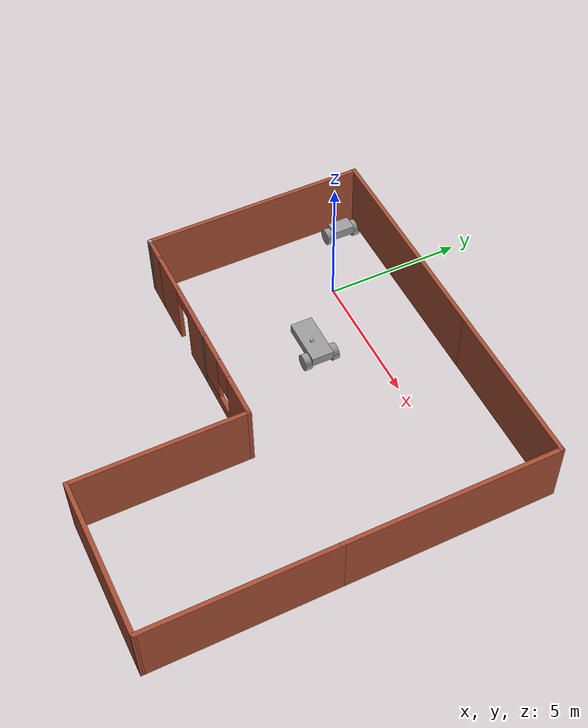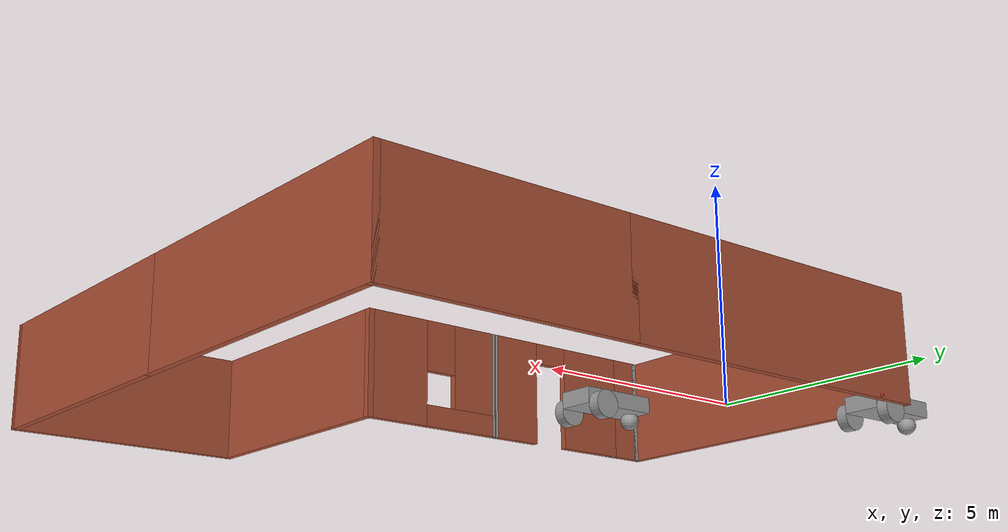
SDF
<?xml version='1.0'?>
<sdf version='1.6'>
  <model name='firstmodel'>
    <model name='first_robot'>
      <link name='link_0'>
        <inertial>
          <mass>0.505177</mass>
          <inertia>
            <ixx>0.0333345</ixx>
            <ixy>0</ixy>
            <ixz>0</ixz>
            <iyy>0.138072</iyy>
            <iyz>0</iyz>
            <izz>0.161276</izz>
          </inertia>
          <pose frame=''>0 0 0.4 0 -0 0</pose>
        </inertial>
        <pose frame=''>-0.130088 0.018348 0.092404 0 -0 0</pose>
        <gravity>1</gravity>
        <self_collide>0</self_collide>
        <kinematic>0</kinematic>
        <enable_wind>0</enable_wind>
        <visual name='visual'>
          <pose frame=''>0 0 0 0 -0 0</pose>
          <geometry>
            <box>
              <size>1.77748 0.819461 0.346863</size>
            </box>
          </geometry>
          <material>
            <lighting>1</lighting>
            <script>
              <uri>file://media/materials/scripts/gazebo.material</uri>
              <name>Gazebo/Grey</name>
            </script>
            <shader type='vertex'>
              <normal_map>__default__</normal_map>
            </shader>
            <ambient>0.3 0.3 0.3 1</ambient>
            <diffuse>0.7 0.7 0.7 1</diffuse>
            <specular>0.01 0.01 0.01 1</specular>
            <emissive>0 0 0 1</emissive>
          </material>
          <transparency>0</transparency>
          <cast_shadows>1</cast_shadows>
        </visual>
        <collision name='collision'>
          <laser_retro>0</laser_retro>
          <max_contacts>10</max_contacts>
          <pose frame=''>0 0 0 0 -0 0</pose>
          <geometry>
            <box>
              <size>1.77748 0.819461 0.346863</size>
            </box>
          </geometry>
          <surface>
            <friction>
              <ode>
                <mu>1</mu>
                <mu2>1</mu2>
                <fdir1>0 0 0</fdir1>
                <slip1>0</slip1>
                <slip2>0</slip2>
              </ode>
              <torsional>
                <coefficient>1</coefficient>
                <patch_radius>0</patch_radius>
                <surface_radius>0</surface_radius>
                <use_patch_radius>1</use_patch_radius>
                <ode>
                  <slip>0</slip>
                </ode>
              </torsional>
            </friction>
            <bounce>
              <restitution_coefficient>0</restitution_coefficient>
              <threshold>1e+06</threshold>
            </bounce>
            <contact>
              <collide_without_contact>0</collide_without_contact>
              <collide_without_contact_bitmask>1</collide_without_contact_bitmask>
              <collide_bitmask>1</collide_bitmask>
              <ode>
                <soft_cfm>0</soft_cfm>
                <soft_erp>0.2</soft_erp>
                <kp>1e+13</kp>
                <kd>1</kd>
                <max_vel>0.01</max_vel>
                <min_depth>0</min_depth>
              </ode>
              <bullet>
                <split_impulse>1</split_impulse>
                <split_impulse_penetration_threshold>-0.01</split_impulse_penetration_threshold>
                <soft_cfm>0</soft_cfm>
                <soft_erp>0.2</soft_erp>
                <kp>1e+13</kp>
                <kd>1</kd>
              </bullet>
            </contact>
          </surface>
        </collision>
      </link>
      <link name='link_1'>
        <inertial>
          <mass>1</mass>
          <inertia>
            <ixx>0.145833</ixx>
            <ixy>0</ixy>
            <ixz>0</ixz>
            <iyy>0.145833</iyy>
            <iyz>0</iyz>
            <izz>0.125</izz>
          </inertia>
          <pose frame=''>0 0 0 0 -0 0</pose>
        </inertial>
        <pose frame=''>0.458652 -0.516412 -0.107596 1.5707 -0 0</pose>
        <gravity>1</gravity>
        <self_collide>0</self_collide>
        <kinematic>0</kinematic>
        <enable_wind>0</enable_wind>
        <visual name='visual'>
          <pose frame=''>0 0 0 0 -0 0</pose>
          <geometry>
            <cylinder>
              <radius>0.3</radius>
              <length>0.25</length>
            </cylinder>
          </geometry>
          <material>
            <lighting>1</lighting>
            <script>
              <uri>file://media/materials/scripts/gazebo.material</uri>
              <name>Gazebo/Grey</name>
            </script>
            <shader type='vertex'>
              <normal_map>__default__</normal_map>
            </shader>
            <ambient>0.3 0.3 0.3 1</ambient>
            <diffuse>0.7 0.7 0.7 1</diffuse>
            <specular>0.01 0.01 0.01 1</specular>
            <emissive>0 0 0 1</emissive>
          </material>
          <transparency>0</transparency>
          <cast_shadows>1</cast_shadows>
        </visual>
        <collision name='collision'>
          <laser_retro>0</laser_retro>
          <max_contacts>10</max_contacts>
          <pose frame=''>0 0 0 0 -0 0</pose>
          <geometry>
            <cylinder>
              <radius>0.3</radius>
              <length>0.25</length>
            </cylinder>
          </geometry>
          <surface>
            <friction>
              <ode>
                <mu>1</mu>
                <mu2>1</mu2>
                <fdir1>0 0 0</fdir1>
                <slip1>0</slip1>
                <slip2>0</slip2>
              </ode>
              <torsional>
                <coefficient>1</coefficient>
                <patch_radius>0</patch_radius>
                <surface_radius>0</surface_radius>
                <use_patch_radius>1</use_patch_radius>
                <ode>
                  <slip>0</slip>
                </ode>
              </torsional>
            </friction>
            <bounce>
              <restitution_coefficient>0</restitution_coefficient>
              <threshold>1e+06</threshold>
            </bounce>
            <contact>
              <collide_without_contact>0</collide_without_contact>
              <collide_without_contact_bitmask>1</collide_without_contact_bitmask>
              <collide_bitmask>1</collide_bitmask>
              <ode>
                <soft_cfm>0</soft_cfm>
                <soft_erp>0.2</soft_erp>
                <kp>1e+13</kp>
                <kd>1</kd>
                <max_vel>0.01</max_vel>
                <min_depth>0</min_depth>
              </ode>
              <bullet>
                <split_impulse>1</split_impulse>
                <split_impulse_penetration_threshold>-0.01</split_impulse_penetration_threshold>
                <soft_cfm>0</soft_cfm>
                <soft_erp>0.2</soft_erp>
                <kp>1e+13</kp>
                <kd>1</kd>
              </bullet>
            </contact>
          </surface>
        </collision>
      </link>
      <link name='link_1_clone'>
        <inertial>
          <mass>1</mass>
          <inertia>
            <ixx>0.145833</ixx>
            <ixy>0</ixy>
            <ixz>0</ixz>
            <iyy>0.145833</iyy>
            <iyz>0</iyz>
            <izz>0.125</izz>
          </inertia>
          <pose frame=''>0 0 0 0 -0 0</pose>
        </inertial>
        <pose frame=''>0.458652 0.553107 -0.107596 1.5707 -0 0</pose>
        <gravity>1</gravity>
        <self_collide>0</self_collide>
        <kinematic>0</kinematic>
        <enable_wind>0</enable_wind>
        <visual name='visual'>
          <pose frame=''>0 0 0 0 -0 0</pose>
          <geometry>
            <cylinder>
              <radius>0.3</radius>
              <length>0.25</length>
            </cylinder>
          </geometry>
          <material>
            <lighting>1</lighting>
            <script>
              <uri>file://media/materials/scripts/gazebo.material</uri>
              <name>Gazebo/Grey</name>
            </script>
            <shader type='vertex'>
              <normal_map>__default__</normal_map>
            </shader>
            <ambient>0.3 0.3 0.3 1</ambient>
            <diffuse>0.7 0.7 0.7 1</diffuse>
            <specular>0.01 0.01 0.01 1</specular>
            <emissive>0 0 0 1</emissive>
          </material>
          <transparency>0</transparency>
          <cast_shadows>1</cast_shadows>
        </visual>
        <collision name='collision'>
          <laser_retro>0</laser_retro>
          <max_contacts>10</max_contacts>
          <pose frame=''>0 0 0 0 -0 0</pose>
          <geometry>
            <cylinder>
              <radius>0.3</radius>
              <length>0.25</length>
            </cylinder>
          </geometry>
          <surface>
            <friction>
              <ode>
                <mu>1</mu>
                <mu2>1</mu2>
                <fdir1>0 0 0</fdir1>
                <slip1>0</slip1>
                <slip2>0</slip2>
              </ode>
              <torsional>
                <coefficient>1</coefficient>
                <patch_radius>0</patch_radius>
                <surface_radius>0</surface_radius>
                <use_patch_radius>1</use_patch_radius>
                <ode>
                  <slip>0</slip>
                </ode>
              </torsional>
            </friction>
            <bounce>
              <restitution_coefficient>0</restitution_coefficient>
              <threshold>1e+06</threshold>
            </bounce>
            <contact>
              <collide_without_contact>0</collide_without_contact>
              <collide_without_contact_bitmask>1</collide_without_contact_bitmask>
              <collide_bitmask>1</collide_bitmask>
              <ode>
                <soft_cfm>0</soft_cfm>
                <soft_erp>0.2</soft_erp>
                <kp>1e+13</kp>
                <kd>1</kd>
                <max_vel>0.01</max_vel>
                <min_depth>0</min_depth>
              </ode>
              <bullet>
                <split_impulse>1</split_impulse>
                <split_impulse_penetration_threshold>-0.01</split_impulse_penetration_threshold>
                <soft_cfm>0</soft_cfm>
                <soft_erp>0.2</soft_erp>
                <kp>1e+13</kp>
                <kd>1</kd>
              </bullet>
            </contact>
          </surface>
        </collision>
      </link>
      <link name='link_2'>
        <inertial>
          <mass>1</mass>
          <inertia>
            <ixx>0.1</ixx>
            <ixy>0</ixy>
            <ixz>0</ixz>
            <iyy>0.1</iyy>
            <iyz>0</iyz>
            <izz>0.1</izz>
          </inertia>
          <pose frame=''>0 0 0 0 -0 0</pose>
        </inertial>
        <pose frame=''>-0.818828 0.018348 -0.207596 0 -0 0</pose>
        <gravity>1</gravity>
        <self_collide>0</self_collide>
        <kinematic>0</kinematic>
        <enable_wind>0</enable_wind>
        <visual name='visual'>
          <pose frame=''>0 0 0 0 -0 0</pose>
          <geometry>
            <sphere>
              <radius>0.2</radius>
            </sphere>
          </geometry>
          <material>
            <lighting>1</lighting>
            <script>
              <uri>file://media/materials/scripts/gazebo.material</uri>
              <name>Gazebo/Grey</name>
            </script>
            <shader type='vertex'>
              <normal_map>__default__</normal_map>
            </shader>
            <ambient>0.3 0.3 0.3 1</ambient>
            <diffuse>0.7 0.7 0.7 1</diffuse>
            <specular>0.01 0.01 0.01 1</specular>
            <emissive>0 0 0 1</emissive>
          </material>
          <transparency>0</transparency>
          <cast_shadows>1</cast_shadows>
        </visual>
        <collision name='collision'>
          <laser_retro>0</laser_retro>
          <max_contacts>10</max_contacts>
          <pose frame=''>0 0 0 0 -0 0</pose>
          <geometry>
            <sphere>
              <radius>0.2</radius>
            </sphere>
          </geometry>
          <surface>
            <friction>
              <ode>
                <mu>1</mu>
                <mu2>1</mu2>
                <fdir1>0 0 0</fdir1>
                <slip1>0</slip1>
                <slip2>0</slip2>
              </ode>
              <torsional>
                <coefficient>1</coefficient>
                <patch_radius>0</patch_radius>
                <surface_radius>0</surface_radius>
                <use_patch_radius>1</use_patch_radius>
                <ode>
                  <slip>0</slip>
                </ode>
              </torsional>
            </friction>
            <bounce>
              <restitution_coefficient>0</restitution_coefficient>
              <threshold>1e+06</threshold>
            </bounce>
            <contact>
              <collide_without_contact>0</collide_without_contact>
              <collide_without_contact_bitmask>1</collide_without_contact_bitmask>
              <collide_bitmask>1</collide_bitmask>
              <ode>
                <soft_cfm>0</soft_cfm>
                <soft_erp>0.2</soft_erp>
                <kp>1e+13</kp>
                <kd>1</kd>
                <max_vel>0.01</max_vel>
                <min_depth>0</min_depth>
              </ode>
              <bullet>
                <split_impulse>1</split_impulse>
                <split_impulse_penetration_threshold>-0.01</split_impulse_penetration_threshold>
                <soft_cfm>0</soft_cfm>
                <soft_erp>0.2</soft_erp>
                <kp>1e+13</kp>
                <kd>1</kd>
              </bullet>
            </contact>
          </surface>
        </collision>
      </link>
      <model name='depth_camera'>
        <link name='link'>
          <pose frame=''>0 0 0.05 0 -0 0</pose>
          <inertial>
            <mass>0.1</mass>
            <inertia>
              <ixx>0.000166667</ixx>
              <iyy>0.000166667</iyy>
              <izz>0.000166667</izz>
              <ixy>0</ixy>
              <ixz>0</ixz>
              <iyz>0</iyz>
            </inertia>
          </inertial>
          <collision name='collision'>
            <geometry>
              <box>
                <size>0.1 0.1 0.1</size>
              </box>
            </geometry>
          </collision>
          <visual name='visual'>
            <geometry>
              <box>
                <size>0.1 0.1 0.1</size>
              </box>
            </geometry>
          </visual>
          <sensor name='camera' type='depth'>
            <camera name='__default__'>
              <horizontal_fov>1.047</horizontal_fov>
              <image>
                <width>320</width>
                <height>240</height>
              </image>
              <clip>
                <near>0.1</near>
                <far>100</far>
              </clip>
            </camera>
            <always_on>1</always_on>
            <update_rate>30</update_rate>
            <visualize>1</visualize>
          </sensor>
        </link>
        <pose frame=''>0.031614 -0.073392 0.330386 0 -0 0</pose>
      </model>
      <joint name='link_0_JOINT_2' type='revolute'>
        <parent>link_0</parent>
        <child>link_1_clone</child>
        <pose frame=''>0 0 0 0 -0 0</pose>
        <axis>
          <xyz>0 0 1</xyz>
          <use_parent_model_frame>0</use_parent_model_frame>
          <limit>
            <lower>-1.79769e+308</lower>
            <upper>1.79769e+308</upper>
            <effort>-1</effort>
            <velocity>-1</velocity>
          </limit>
          <dynamics>
            <spring_reference>0</spring_reference>
            <spring_stiffness>0</spring_stiffness>
            <damping>0</damping>
          </dynamics>
        </axis>
        <physics>
          <ode>
            <limit>
              <cfm>0</cfm>
              <erp>0.2</erp>
            </limit>
            <suspension>
              <cfm>0</cfm>
              <erp>0.2</erp>
            </suspension>
          </ode>
        </physics>
      </joint>
      <joint name='link_0_JOINT_3' type='revolute'>
        <parent>link_0</parent>
        <child>link_1</child>
        <pose frame=''>0 0 0 0 -0 0</pose>
        <axis>
          <xyz>0 0 1</xyz>
          <use_parent_model_frame>0</use_parent_model_frame>
          <limit>
            <lower>-1.79769e+308</lower>
            <upper>1.79769e+308</upper>
            <effort>-1</effort>
            <velocity>-1</velocity>
          </limit>
          <dynamics>
            <spring_reference>0</spring_reference>
            <spring_stiffness>0</spring_stiffness>
            <damping>0</damping>
          </dynamics>
        </axis>
        <physics>
          <ode>
            <limit>
              <cfm>0</cfm>
              <erp>0.2</erp>
            </limit>
            <suspension>
              <cfm>0</cfm>
              <erp>0.2</erp>
            </suspension>
          </ode>
        </physics>
      </joint>
      <joint name='link_0_JOINT_4' type='ball'>
        <parent>link_0</parent>
        <child>link_2</child>
        <pose frame=''>0 0 0 0 -0 0</pose>
        <physics>
          <ode>
            <limit>
              <cfm>0</cfm>
              <erp>0.2</erp>
            </limit>
            <suspension>
              <cfm>0</cfm>
              <erp>0.2</erp>
            </suspension>
          </ode>
        </physics>
      </joint>
      <joint name='link_0_JOINT_8' type='fixed'>
        <parent>link_0</parent>
        <child>depth_camera::link</child>
        <pose frame=''>0 0 0 0 -0 0</pose>
        <physics>
          <ode>
            <limit>
              <cfm>0</cfm>
              <erp>0.2</erp>
            </limit>
            <suspension>
              <cfm>0</cfm>
              <erp>0.2</erp>
            </suspension>
          </ode>
        </physics>
      </joint>
      <static>0</static>
      <allow_auto_disable>1</allow_auto_disable>
      <plugin name='follower' filename='libFollowerPlugin.so'/>
      <pose frame=''>-3.14366 1.65985 0 0 -0 0</pose>
    </model>
    <model name='cricket_ball'>
      <link name='link'>
        <pose frame=''>0 0 0.0375 0 -0 0</pose>
        <inertial>
          <mass>0.1467</mass>
          <inertia>
            <ixx>8.25187e-05</ixx>
            <ixy>0</ixy>
            <ixz>0</ixz>
            <iyy>8.25187e-05</iyy>
            <iyz>0</iyz>
            <izz>8.25187e-05</izz>
          </inertia>
        </inertial>
        <collision name='collision'>
          <geometry>
            <sphere>
              <radius>0.0375</radius>
            </sphere>
          </geometry>
          <surface>
            <contact>
              <poissons_ratio>0.347</poissons_ratio>
              <elastic_modulus>8.8e+09</elastic_modulus>
              <ode>
                <kp>100000</kp>
                <kd>100</kd>
                <max_vel>100</max_vel>
                <min_depth>0.001</min_depth>
              </ode>
            </contact>
            <friction>
              <torsional>
                <coefficient>1</coefficient>
                <use_patch_radius>0</use_patch_radius>
                <surface_radius>0.01</surface_radius>
              </torsional>
            </friction>
          </surface>
        </collision>
        <visual name='visual'>
          <geometry>
            <sphere>
              <radius>0.0375</radius>
            </sphere>
          </geometry>
          <material>
            <script>
              <uri>file://media/materials/scripts/gazebo.material</uri>
              <name>Gazebo/Red</name>
            </script>
          </material>
        </visual>
        <velocity_decay>
          <linear>0</linear>
          <angular>0.005</angular>
        </velocity_decay>
      </link>
      <pose frame=''>-0.814057 2.34311 0 0 -0 0</pose>
    </model>
    <model name='cricket_ball_0'>
      <link name='link'>
        <pose frame=''>0 0 0.0375 0 -0 0</pose>
        <inertial>
          <mass>0.1467</mass>
          <inertia>
            <ixx>8.25187e-05</ixx>
            <ixy>0</ixy>
            <ixz>0</ixz>
            <iyy>8.25187e-05</iyy>
            <iyz>0</iyz>
            <izz>8.25187e-05</izz>
          </inertia>
        </inertial>
        <collision name='collision'>
          <geometry>
            <sphere>
              <radius>0.0375</radius>
            </sphere>
          </geometry>
          <surface>
            <contact>
              <poissons_ratio>0.347</poissons_ratio>
              <elastic_modulus>8.8e+09</elastic_modulus>
              <ode>
                <kp>100000</kp>
                <kd>100</kd>
                <max_vel>100</max_vel>
                <min_depth>0.001</min_depth>
              </ode>
            </contact>
            <friction>
              <torsional>
                <coefficient>1</coefficient>
                <use_patch_radius>0</use_patch_radius>
                <surface_radius>0.01</surface_radius>
              </torsional>
            </friction>
          </surface>
        </collision>
        <visual name='visual'>
          <geometry>
            <sphere>
              <radius>0.0375</radius>
            </sphere>
          </geometry>
          <material>
            <script>
              <uri>file://media/materials/scripts/gazebo.material</uri>
              <name>Gazebo/Red</name>
            </script>
          </material>
        </visual>
        <velocity_decay>
          <linear>0</linear>
          <angular>0.005</angular>
        </velocity_decay>
      </link>
      <pose frame=''>-1.98854 2.53392 0 0 -0 0</pose>
    </model>
    <model name='first_robot_0'>
      <link name='link_0'>
        <inertial>
          <mass>0.505177</mass>
          <inertia>
            <ixx>0.0333345</ixx>
            <ixy>0</ixy>
            <ixz>0</ixz>
            <iyy>0.138072</iyy>
            <iyz>0</iyz>
            <izz>0.161276</izz>
          </inertia>
          <pose frame=''>0 0 0.4 0 -0 0</pose>
        </inertial>
        <pose frame=''>-0.130088 0.018348 0.092404 0 -0 0</pose>
        <gravity>1</gravity>
        <self_collide>0</self_collide>
        <kinematic>0</kinematic>
        <enable_wind>0</enable_wind>
        <visual name='visual'>
          <pose frame=''>0 0 0 0 -0 0</pose>
          <geometry>
            <box>
              <size>1.77748 0.819461 0.346863</size>
            </box>
          </geometry>
          <material>
            <lighting>1</lighting>
            <script>
              <uri>file://media/materials/scripts/gazebo.material</uri>
              <name>Gazebo/Grey</name>
            </script>
            <shader type='vertex'>
              <normal_map>__default__</normal_map>
            </shader>
            <ambient>0.3 0.3 0.3 1</ambient>
            <diffuse>0.7 0.7 0.7 1</diffuse>
            <specular>0.01 0.01 0.01 1</specular>
            <emissive>0 0 0 1</emissive>
          </material>
          <transparency>0</transparency>
          <cast_shadows>1</cast_shadows>
        </visual>
        <collision name='collision'>
          <laser_retro>0</laser_retro>
          <max_contacts>10</max_contacts>
          <pose frame=''>0 0 0 0 -0 0</pose>
          <geometry>
            <box>
              <size>1.77748 0.819461 0.346863</size>
            </box>
          </geometry>
          <surface>
            <friction>
              <ode>
                <mu>1</mu>
                <mu2>1</mu2>
                <fdir1>0 0 0</fdir1>
                <slip1>0</slip1>
                <slip2>0</slip2>
              </ode>
              <torsional>
                <coefficient>1</coefficient>
                <patch_radius>0</patch_radius>
                <surface_radius>0</surface_radius>
                <use_patch_radius>1</use_patch_radius>
                <ode>
                  <slip>0</slip>
                </ode>
              </torsional>
            </friction>
            <bounce>
              <restitution_coefficient>0</restitution_coefficient>
              <threshold>1e+06</threshold>
            </bounce>
            <contact>
              <collide_without_contact>0</collide_without_contact>
              <collide_without_contact_bitmask>1</collide_without_contact_bitmask>
              <collide_bitmask>1</collide_bitmask>
              <ode>
                <soft_cfm>0</soft_cfm>
                <soft_erp>0.2</soft_erp>
                <kp>1e+13</kp>
                <kd>1</kd>
                <max_vel>0.01</max_vel>
                <min_depth>0</min_depth>
              </ode>
              <bullet>
                <split_impulse>1</split_impulse>
                <split_impulse_penetration_threshold>-0.01</split_impulse_penetration_threshold>
                <soft_cfm>0</soft_cfm>
                <soft_erp>0.2</soft_erp>
                <kp>1e+13</kp>
                <kd>1</kd>
              </bullet>
            </contact>
          </surface>
        </collision>
      </link>
      <link name='link_1'>
        <inertial>
          <mass>1</mass>
          <inertia>
            <ixx>0.145833</ixx>
            <ixy>0</ixy>
            <ixz>0</ixz>
            <iyy>0.145833</iyy>
            <iyz>0</iyz>
            <izz>0.125</izz>
          </inertia>
          <pose frame=''>0 0 0 0 -0 0</pose>
        </inertial>
        <pose frame=''>0.458652 -0.516412 -0.107596 1.5707 -0 0</pose>
        <gravity>1</gravity>
        <self_collide>0</self_collide>
        <kinematic>0</kinematic>
        <enable_wind>0</enable_wind>
        <visual name='visual'>
          <pose frame=''>0 0 0 0 -0 0</pose>
          <geometry>
            <cylinder>
              <radius>0.3</radius>
              <length>0.25</length>
            </cylinder>
          </geometry>
          <material>
            <lighting>1</lighting>
            <script>
              <uri>file://media/materials/scripts/gazebo.material</uri>
              <name>Gazebo/Grey</name>
            </script>
            <shader type='vertex'>
              <normal_map>__default__</normal_map>
            </shader>
            <ambient>0.3 0.3 0.3 1</ambient>
            <diffuse>0.7 0.7 0.7 1</diffuse>
            <specular>0.01 0.01 0.01 1</specular>
            <emissive>0 0 0 1</emissive>
          </material>
          <transparency>0</transparency>
          <cast_shadows>1</cast_shadows>
        </visual>
        <collision name='collision'>
          <laser_retro>0</laser_retro>
          <max_contacts>10</max_contacts>
          <pose frame=''>0 0 0 0 -0 0</pose>
          <geometry>
            <cylinder>
              <radius>0.3</radius>
              <length>0.25</length>
            </cylinder>
          </geometry>
          <surface>
            <friction>
              <ode>
                <mu>1</mu>
                <mu2>1</mu2>
                <fdir1>0 0 0</fdir1>
                <slip1>0</slip1>
                <slip2>0</slip2>
              </ode>
              <torsional>
                <coefficient>1</coefficient>
                <patch_radius>0</patch_radius>
                <surface_radius>0</surface_radius>
                <use_patch_radius>1</use_patch_radius>
                <ode>
                  <slip>0</slip>
                </ode>
              </torsional>
            </friction>
            <bounce>
              <restitution_coefficient>0</restitution_coefficient>
              <threshold>1e+06</threshold>
            </bounce>
            <contact>
              <collide_without_contact>0</collide_without_contact>
              <collide_without_contact_bitmask>1</collide_without_contact_bitmask>
              <collide_bitmask>1</collide_bitmask>
              <ode>
                <soft_cfm>0</soft_cfm>
                <soft_erp>0.2</soft_erp>
                <kp>1e+13</kp>
                <kd>1</kd>
                <max_vel>0.01</max_vel>
                <min_depth>0</min_depth>
              </ode>
              <bullet>
                <split_impulse>1</split_impulse>
                <split_impulse_penetration_threshold>-0.01</split_impulse_penetration_threshold>
                <soft_cfm>0</soft_cfm>
                <soft_erp>0.2</soft_erp>
                <kp>1e+13</kp>
                <kd>1</kd>
              </bullet>
            </contact>
          </surface>
        </collision>
      </link>
      <link name='link_1_clone'>
        <inertial>
          <mass>1</mass>
          <inertia>
            <ixx>0.145833</ixx>
            <ixy>0</ixy>
            <ixz>0</ixz>
            <iyy>0.145833</iyy>
            <iyz>0</iyz>
            <izz>0.125</izz>
          </inertia>
          <pose frame=''>0 0 0 0 -0 0</pose>
        </inertial>
        <pose frame=''>0.458652 0.553107 -0.107596 1.5707 -0 0</pose>
        <gravity>1</gravity>
        <self_collide>0</self_collide>
        <kinematic>0</kinematic>
        <enable_wind>0</enable_wind>
        <visual name='visual'>
          <pose frame=''>0 0 0 0 -0 0</pose>
          <geometry>
            <cylinder>
              <radius>0.3</radius>
              <length>0.25</length>
            </cylinder>
          </geometry>
          <material>
            <lighting>1</lighting>
            <script>
              <uri>file://media/materials/scripts/gazebo.material</uri>
              <name>Gazebo/Grey</name>
            </script>
            <shader type='vertex'>
              <normal_map>__default__</normal_map>
            </shader>
            <ambient>0.3 0.3 0.3 1</ambient>
            <diffuse>0.7 0.7 0.7 1</diffuse>
            <specular>0.01 0.01 0.01 1</specular>
            <emissive>0 0 0 1</emissive>
          </material>
          <transparency>0</transparency>
          <cast_shadows>1</cast_shadows>
        </visual>
        <collision name='collision'>
          <laser_retro>0</laser_retro>
          <max_contacts>10</max_contacts>
          <pose frame=''>0 0 0 0 -0 0</pose>
          <geometry>
            <cylinder>
              <radius>0.3</radius>
              <length>0.25</length>
            </cylinder>
          </geometry>
          <surface>
            <friction>
              <ode>
                <mu>1</mu>
                <mu2>1</mu2>
                <fdir1>0 0 0</fdir1>
                <slip1>0</slip1>
                <slip2>0</slip2>
              </ode>
              <torsional>
                <coefficient>1</coefficient>
                <patch_radius>0</patch_radius>
                <surface_radius>0</surface_radius>
                <use_patch_radius>1</use_patch_radius>
                <ode>
                  <slip>0</slip>
                </ode>
              </torsional>
            </friction>
            <bounce>
              <restitution_coefficient>0</restitution_coefficient>
              <threshold>1e+06</threshold>
            </bounce>
            <contact>
              <collide_without_contact>0</collide_without_contact>
              <collide_without_contact_bitmask>1</collide_without_contact_bitmask>
              <collide_bitmask>1</collide_bitmask>
              <ode>
                <soft_cfm>0</soft_cfm>
                <soft_erp>0.2</soft_erp>
                <kp>1e+13</kp>
                <kd>1</kd>
                <max_vel>0.01</max_vel>
                <min_depth>0</min_depth>
              </ode>
              <bullet>
                <split_impulse>1</split_impulse>
                <split_impulse_penetration_threshold>-0.01</split_impulse_penetration_threshold>
                <soft_cfm>0</soft_cfm>
                <soft_erp>0.2</soft_erp>
                <kp>1e+13</kp>
                <kd>1</kd>
              </bullet>
            </contact>
          </surface>
        </collision>
      </link>
      <link name='link_2'>
        <inertial>
          <mass>1</mass>
          <inertia>
            <ixx>0.1</ixx>
            <ixy>0</ixy>
            <ixz>0</ixz>
            <iyy>0.1</iyy>
            <iyz>0</iyz>
            <izz>0.1</izz>
          </inertia>
          <pose frame=''>0 0 0 0 -0 0</pose>
        </inertial>
        <pose frame=''>-0.818828 0.018348 -0.207596 0 -0 0</pose>
        <gravity>1</gravity>
        <self_collide>0</self_collide>
        <kinematic>0</kinematic>
        <enable_wind>0</enable_wind>
        <visual name='visual'>
          <pose frame=''>0 0 0 0 -0 0</pose>
          <geometry>
            <sphere>
              <radius>0.2</radius>
            </sphere>
          </geometry>
          <material>
            <lighting>1</lighting>
            <script>
              <uri>file://media/materials/scripts/gazebo.material</uri>
              <name>Gazebo/Grey</name>
            </script>
            <shader type='vertex'>
              <normal_map>__default__</normal_map>
            </shader>
            <ambient>0.3 0.3 0.3 1</ambient>
            <diffuse>0.7 0.7 0.7 1</diffuse>
            <specular>0.01 0.01 0.01 1</specular>
            <emissive>0 0 0 1</emissive>
          </material>
          <transparency>0</transparency>
          <cast_shadows>1</cast_shadows>
        </visual>
        <collision name='collision'>
          <laser_retro>0</laser_retro>
          <max_contacts>10</max_contacts>
          <pose frame=''>0 0 0 0 -0 0</pose>
          <geometry>
            <sphere>
              <radius>0.2</radius>
            </sphere>
          </geometry>
          <surface>
            <friction>
              <ode>
                <mu>1</mu>
                <mu2>1</mu2>
                <fdir1>0 0 0</fdir1>
                <slip1>0</slip1>
                <slip2>0</slip2>
              </ode>
              <torsional>
                <coefficient>1</coefficient>
                <patch_radius>0</patch_radius>
                <surface_radius>0</surface_radius>
                <use_patch_radius>1</use_patch_radius>
                <ode>
                  <slip>0</slip>
                </ode>
              </torsional>
            </friction>
            <bounce>
              <restitution_coefficient>0</restitution_coefficient>
              <threshold>1e+06</threshold>
            </bounce>
            <contact>
              <collide_without_contact>0</collide_without_contact>
              <collide_without_contact_bitmask>1</collide_without_contact_bitmask>
              <collide_bitmask>1</collide_bitmask>
              <ode>
                <soft_cfm>0</soft_cfm>
                <soft_erp>0.2</soft_erp>
                <kp>1e+13</kp>
                <kd>1</kd>
                <max_vel>0.01</max_vel>
                <min_depth>0</min_depth>
              </ode>
              <bullet>
                <split_impulse>1</split_impulse>
                <split_impulse_penetration_threshold>-0.01</split_impulse_penetration_threshold>
                <soft_cfm>0</soft_cfm>
                <soft_erp>0.2</soft_erp>
                <kp>1e+13</kp>
                <kd>1</kd>
              </bullet>
            </contact>
          </surface>
        </collision>
      </link>
      <model name='depth_camera'>
        <link name='link'>
          <pose frame=''>0 0 0.05 0 -0 0</pose>
          <inertial>
            <mass>0.1</mass>
            <inertia>
              <ixx>0.000166667</ixx>
              <iyy>0.000166667</iyy>
              <izz>0.000166667</izz>
              <ixy>0</ixy>
              <ixz>0</ixz>
              <iyz>0</iyz>
            </inertia>
          </inertial>
          <collision name='collision'>
            <geometry>
              <box>
                <size>0.1 0.1 0.1</size>
              </box>
            </geometry>
          </collision>
          <visual name='visual'>
            <geometry>
              <box>
                <size>0.1 0.1 0.1</size>
              </box>
            </geometry>
          </visual>
          <sensor name='camera' type='depth'>
            <camera name='__default__'>
              <horizontal_fov>1.047</horizontal_fov>
              <image>
                <width>320</width>
                <height>240</height>
              </image>
              <clip>
                <near>0.1</near>
                <far>100</far>
              </clip>
            </camera>
            <always_on>1</always_on>
            <update_rate>30</update_rate>
            <visualize>1</visualize>
          </sensor>
        </link>
        <pose frame=''>0.031614 -0.073392 0.330386 0 -0 0</pose>
      </model>
      <joint name='link_0_JOINT_2' type='revolute'>
        <parent>link_0</parent>
        <child>link_1_clone</child>
        <pose frame=''>0 0 0 0 -0 0</pose>
        <axis>
          <xyz>0 0 1</xyz>
          <use_parent_model_frame>0</use_parent_model_frame>
          <limit>
            <lower>-1.79769e+308</lower>
            <upper>1.79769e+308</upper>
            <effort>-1</effort>
            <velocity>-1</velocity>
          </limit>
          <dynamics>
            <spring_reference>0</spring_reference>
            <spring_stiffness>0</spring_stiffness>
            <damping>0</damping>
          </dynamics>
        </axis>
        <physics>
          <ode>
            <limit>
              <cfm>0</cfm>
              <erp>0.2</erp>
            </limit>
            <suspension>
              <cfm>0</cfm>
              <erp>0.2</erp>
            </suspension>
          </ode>
        </physics>
      </joint>
      <joint name='link_0_JOINT_3' type='revolute'>
        <parent>link_0</parent>
        <child>link_1</child>
        <pose frame=''>0 0 0 0 -0 0</pose>
        <axis>
          <xyz>0 0 1</xyz>
          <use_parent_model_frame>0</use_parent_model_frame>
          <limit>
            <lower>-1.79769e+308</lower>
            <upper>1.79769e+308</upper>
            <effort>-1</effort>
            <velocity>-1</velocity>
          </limit>
          <dynamics>
            <spring_reference>0</spring_reference>
            <spring_stiffness>0</spring_stiffness>
            <damping>0</damping>
          </dynamics>
        </axis>
        <physics>
          <ode>
            <limit>
              <cfm>0</cfm>
              <erp>0.2</erp>
            </limit>
            <suspension>
              <cfm>0</cfm>
              <erp>0.2</erp>
            </suspension>
          </ode>
        </physics>
      </joint>
      <joint name='link_0_JOINT_4' type='ball'>
        <parent>link_0</parent>
        <child>link_2</child>
        <pose frame=''>0 0 0 0 -0 0</pose>
        <physics>
          <ode>
            <limit>
              <cfm>0</cfm>
              <erp>0.2</erp>
            </limit>
            <suspension>
              <cfm>0</cfm>
              <erp>0.2</erp>
            </suspension>
          </ode>
        </physics>
      </joint>
      <joint name='link_0_JOINT_8' type='fixed'>
        <parent>link_0</parent>
        <child>depth_camera::link</child>
        <pose frame=''>0 0 0 0 -0 0</pose>
        <physics>
          <ode>
            <limit>
              <cfm>0</cfm>
              <erp>0.2</erp>
            </limit>
            <suspension>
              <cfm>0</cfm>
              <erp>0.2</erp>
            </suspension>
          </ode>
        </physics>
      </joint>
      <static>0</static>
      <allow_auto_disable>1</allow_auto_disable>
      <plugin name='follower' filename='libFollowerPlugin.so'/>
      <pose frame=''>1.98286 -1.7954 0 0 -0 0</pose>
    </model>
    <model name='firstdemo'>
      <pose frame=''>3.9634 -4.74148 0 0 -0 0</pose>
      <link name='Wall_14'>
        <collision name='Wall_14_Collision'>
          <geometry>
            <box>
              <size>8.25 0.15 2.5</size>
            </box>
          </geometry>
          <pose frame=''>0 0 1.25 0 -0 0</pose>
        </collision>
        <visual name='Wall_14_Visual'>
          <pose frame=''>0 0 1.25 0 -0 0</pose>
          <geometry>
            <box>
              <size>8.25 0.15 2.5</size>
            </box>
          </geometry>
          <material>
            <script>
              <uri>file://media/materials/scripts/gazebo.material</uri>
              <name>Gazebo/Bricks</name>
            </script>
            <ambient>0.996078 0.47451 0.0196078 1</ambient>
          </material>
          <meta>
            <layer>0</layer>
          </meta>
        </visual>
        <pose frame=''>-2.92516 7.11317 0 0 -0 0</pose>
      </link>
      <link name='Wall_15'>
        <collision name='Wall_15_Collision'>
          <geometry>
            <box>
              <size>6 0.15 2.5</size>
            </box>
          </geometry>
          <pose frame=''>0 0 1.25 0 -0 0</pose>
        </collision>
        <visual name='Wall_15_Visual'>
          <pose frame=''>0 0 1.25 0 -0 0</pose>
          <geometry>
            <box>
              <size>6 0.15 2.5</size>
            </box>
          </geometry>
          <material>
            <script>
              <uri>file://media/materials/scripts/gazebo.material</uri>
              <name>Gazebo/Bricks</name>
            </script>
            <ambient>0.996078 0.47451 0.0196078 1</ambient>
          </material>
          <meta>
            <layer>0</layer>
          </meta>
        </visual>
        <pose frame=''>4.04984 7.11317 0 0 -0 0</pose>
      </link>
      <link name='Wall_16'>
        <collision name='Wall_16_Collision'>
          <geometry>
            <box>
              <size>7.776 0.15 2.5</size>
            </box>
          </geometry>
          <pose frame=''>0 0 1.25 0 -0 0</pose>
        </collision>
        <visual name='Wall_16_Visual'>
          <pose frame=''>0 0 1.25 0 -0 0</pose>
          <geometry>
            <box>
              <size>7.776 0.15 2.5</size>
            </box>
          </geometry>
          <material>
            <script>
              <uri>file://media/materials/scripts/gazebo.material</uri>
              <name>Gazebo/Bricks</name>
            </script>
            <ambient>0.996078 0.47451 0.0196078 1</ambient>
          </material>
          <meta>
            <layer>0</layer>
          </meta>
        </visual>
        <pose frame=''>6.97484 3.30017 0 0 -0 -1.5708</pose>
      </link>
      <link name='Wall_17'>
        <collision name='Wall_17_Collision'>
          <geometry>
            <box>
              <size>6.75006 0.15 2.5</size>
            </box>
          </geometry>
          <pose frame=''>0 0 1.25 0 -0 0</pose>
        </collision>
        <visual name='Wall_17_Visual'>
          <pose frame=''>0 0 1.25 0 -0 0</pose>
          <geometry>
            <box>
              <size>6.75006 0.15 2.5</size>
            </box>
          </geometry>
          <material>
            <script>
              <uri>file://media/materials/scripts/gazebo.material</uri>
              <name>Gazebo/Bricks</name>
            </script>
            <ambient>0.996078 0.47451 0.0196078 1</ambient>
          </material>
          <meta>
            <layer>0</layer>
          </meta>
        </visual>
        <pose frame=''>6.97484 -3.81283 0 0 -0 -1.5708</pose>
      </link>
      <link name='Wall_18'>
        <collision name='Wall_18_Collision'>
          <geometry>
            <box>
              <size>5.75 0.15 2.5</size>
            </box>
          </geometry>
          <pose frame=''>0 0 1.25 0 -0 0</pose>
        </collision>
        <visual name='Wall_18_Visual'>
          <pose frame=''>0 0 1.25 0 -0 0</pose>
          <geometry>
            <box>
              <size>5.75 0.15 2.5</size>
            </box>
          </geometry>
          <material>
            <script>
              <uri>file://media/materials/scripts/gazebo.material</uri>
              <name>Gazebo/Bricks</name>
            </script>
            <ambient>0.996078 0.47451 0.0196078 1</ambient>
          </material>
          <meta>
            <layer>0</layer>
          </meta>
        </visual>
        <pose frame=''>4.17484 -7.09983 0 0 -0 3.13695</pose>
      </link>
      <link name='Wall_19'>
        <collision name='Wall_19_Collision'>
          <geometry>
            <box>
              <size>6.25 0.15 2.5</size>
            </box>
          </geometry>
          <pose frame=''>0 0 1.25 0 -0 0</pose>
        </collision>
        <visual name='Wall_19_Visual'>
          <pose frame=''>0 0 1.25 0 -0 0</pose>
          <geometry>
            <box>
              <size>6.25 0.15 2.5</size>
            </box>
          </geometry>
          <material>
            <script>
              <uri>file://media/materials/scripts/gazebo.material</uri>
              <name>Gazebo/Bricks</name>
            </script>
            <ambient>0.996078 0.47451 0.0196078 1</ambient>
          </material>
          <meta>
            <layer>0</layer>
          </meta>
        </visual>
        <pose frame=''>1.37484 -4.03683 0 0 -0 1.5708</pose>
      </link>
      <link name='Wall_20'>
        <pose frame=''>-0.425158 -0.986827 0 0 -0 3.14159</pose>
        <visual name='Wall_20_Visual_0'>
          <pose frame=''>-1.04992 0 1.25 0 -0 0</pose>
          <geometry>
            <box>
              <size>1.65016 0.15 2.5</size>
            </box>
          </geometry>
          <material>
            <script>
              <uri>file://media/materials/scripts/gazebo.material</uri>
              <name>Gazebo/Bricks</name>
            </script>
            <ambient>0.996078 0.47451 0.0196078 1</ambient>
          </material>
          <meta>
            <layer>0</layer>
          </meta>
        </visual>
        <collision name='Wall_20_Collision_0'>
          <geometry>
            <box>
              <size>1.65016 0.15 2.5</size>
            </box>
          </geometry>
          <pose frame=''>-1.04992 0 1.25 0 -0 0</pose>
        </collision>
        <visual name='Wall_20_Visual_1'>
          <pose frame=''>0.825082 0 0.25 0 -0 0</pose>
          <geometry>
            <box>
              <size>2.09984 0.15 0.5</size>
            </box>
          </geometry>
          <material>
            <script>
              <uri>file://media/materials/scripts/gazebo.material</uri>
              <name>Gazebo/Bricks</name>
            </script>
            <ambient>0.996078 0.47451 0.0196078 1</ambient>
          </material>
          <meta>
            <layer>0</layer>
          </meta>
        </visual>
        <collision name='Wall_20_Collision_1'>
          <geometry>
            <box>
              <size>2.09984 0.15 0.5</size>
            </box>
          </geometry>
          <pose frame=''>0.825082 0 0.25 0 -0 0</pose>
        </collision>
        <visual name='Wall_20_Visual_2'>
          <pose frame=''>1.22508 0 1.5 0 -0 0</pose>
          <geometry>
            <box>
              <size>1.29984 0.15 2</size>
            </box>
          </geometry>
          <material>
            <script>
              <uri>file://media/materials/scripts/gazebo.material</uri>
              <name>Gazebo/Bricks</name>
            </script>
            <ambient>0.996078 0.47451 0.0196078 1</ambient>
          </material>
          <meta>
            <layer>0</layer>
          </meta>
        </visual>
        <collision name='Wall_20_Collision_2'>
          <geometry>
            <box>
              <size>1.29984 0.15 2</size>
            </box>
          </geometry>
          <pose frame=''>1.22508 0 1.5 0 -0 0</pose>
        </collision>
        <visual name='Wall_20_Visual_3'>
          <pose frame=''>0.175164 0 1.9 0 -0 0</pose>
          <geometry>
            <box>
              <size>0.8 0.15 1.2</size>
            </box>
          </geometry>
          <material>
            <script>
              <uri>file://media/materials/scripts/gazebo.material</uri>
              <name>Gazebo/Bricks</name>
            </script>
            <ambient>0.996078 0.47451 0.0196078 1</ambient>
          </material>
          <meta>
            <layer>0</layer>
          </meta>
        </visual>
        <collision name='Wall_20_Collision_3'>
          <geometry>
            <box>
              <size>0.8 0.15 1.2</size>
            </box>
          </geometry>
          <pose frame=''>0.175164 0 1.9 0 -0 0</pose>
        </collision>
      </link>
      <link name='Wall_21'>
        <collision name='Wall_21_Collision'>
          <geometry>
            <box>
              <size>0.16 0.15 2.5</size>
            </box>
          </geometry>
          <pose frame=''>0 0 1.25 0 -0 0</pose>
        </collision>
        <visual name='Wall_21_Visual'>
          <pose frame=''>0 0 1.25 0 -0 0</pose>
          <geometry>
            <box>
              <size>0.16 0.15 2.5</size>
            </box>
          </geometry>
          <material>
            <script>
              <uri>file://media/materials/scripts/gazebo.material</uri>
              <name>Gazebo/Grey</name>
            </script>
            <ambient>1 1 1 1</ambient>
          </material>
          <meta>
            <layer>0</layer>
          </meta>
        </visual>
        <pose frame=''>-2.22017 -0.986856 0 0 -0 -0.005994</pose>
      </link>
      <link name='Wall_22'>
        <collision name='Wall_22_Collision'>
          <geometry>
            <box>
              <size>0.16 0.15 2.5</size>
            </box>
          </geometry>
          <pose frame=''>0 0 1.25 0 -0 0</pose>
        </collision>
        <visual name='Wall_22_Visual'>
          <pose frame=''>0 0 1.25 0 -0 0</pose>
          <geometry>
            <box>
              <size>0.16 0.15 2.5</size>
            </box>
          </geometry>
          <material>
            <script>
              <uri>file://media/materials/scripts/gazebo.material</uri>
              <name>Gazebo/Grey</name>
            </script>
            <ambient>1 1 1 1</ambient>
          </material>
          <meta>
            <layer>0</layer>
          </meta>
        </visual>
        <pose frame=''>-2.21017 -0.986856 0 0 -0 0.00597</pose>
      </link>
      <link name='Wall_23'>
        <collision name='Wall_23_Collision'>
          <geometry>
            <box>
              <size>0.16 0.15 2.5</size>
            </box>
          </geometry>
          <pose frame=''>0 0 1.25 0 -0 0</pose>
        </collision>
        <visual name='Wall_23_Visual'>
          <pose frame=''>0 0 1.25 0 -0 0</pose>
          <geometry>
            <box>
              <size>0.16 0.15 2.5</size>
            </box>
          </geometry>
          <material>
            <script>
              <uri>file://media/materials/scripts/gazebo.material</uri>
              <name>Gazebo/Grey</name>
            </script>
            <ambient>1 1 1 1</ambient>
          </material>
          <meta>
            <layer>0</layer>
          </meta>
        </visual>
        <pose frame=''>-2.21017 -0.986856 0 0 -0 -3.13562</pose>
      </link>
      <link name='Wall_28'>
        <pose frame=''>-4.13016 -0.986827 0 0 -0 3.14159</pose>
        <visual name='Wall_28_Visual_0'>
          <pose frame=''>-1.30311 0 1.25 0 -0 0</pose>
          <geometry>
            <box>
              <size>1.39377 0.15 2.5</size>
            </box>
          </geometry>
          <material>
            <script>
              <uri>file://media/materials/scripts/gazebo.material</uri>
              <name>Gazebo/Bricks</name>
            </script>
            <ambient>0.996078 0.47451 0.0196078 1</ambient>
          </material>
          <meta>
            <layer>0</layer>
          </meta>
        </visual>
        <collision name='Wall_28_Collision_0'>
          <geometry>
            <box>
              <size>1.39377 0.15 2.5</size>
            </box>
          </geometry>
          <pose frame=''>-1.30311 0 1.25 0 -0 0</pose>
        </collision>
        <visual name='Wall_28_Visual_1'>
          <pose frame=''>1.14689 0 1.25 0 -0 0</pose>
          <geometry>
            <box>
              <size>1.70623 0.15 2.5</size>
            </box>
          </geometry>
          <material>
            <script>
              <uri>file://media/materials/scripts/gazebo.material</uri>
              <name>Gazebo/Bricks</name>
            </script>
            <ambient>0.996078 0.47451 0.0196078 1</ambient>
          </material>
          <meta>
            <layer>0</layer>
          </meta>
        </visual>
        <collision name='Wall_28_Collision_1'>
          <geometry>
            <box>
              <size>1.70623 0.15 2.5</size>
            </box>
          </geometry>
          <pose frame=''>1.14689 0 1.25 0 -0 0</pose>
        </collision>
        <visual name='Wall_28_Visual_2'>
          <pose frame=''>-0.156229 0 2.25 0 -0 0</pose>
          <geometry>
            <box>
              <size>0.9 0.15 0.5</size>
            </box>
          </geometry>
          <material>
            <script>
              <uri>file://media/materials/scripts/gazebo.material</uri>
              <name>Gazebo/Bricks</name>
            </script>
            <ambient>0.996078 0.47451 0.0196078 1</ambient>
          </material>
          <meta>
            <layer>0</layer>
          </meta>
        </visual>
        <collision name='Wall_28_Collision_2'>
          <geometry>
            <box>
              <size>0.9 0.15 0.5</size>
            </box>
          </geometry>
          <pose frame=''>-0.156229 0 2.25 0 -0 0</pose>
        </collision>
      </link>
      <link name='Wall_29'>
        <collision name='Wall_29_Collision'>
          <geometry>
            <box>
              <size>0.15 0.15 2.5</size>
            </box>
          </geometry>
          <pose frame=''>0 0 1.25 0 -0 0</pose>
        </collision>
        <visual name='Wall_29_Visual'>
          <pose frame=''>0 0 1.25 0 -0 0</pose>
          <geometry>
            <box>
              <size>0.15 0.15 2.5</size>
            </box>
          </geometry>
          <material>
            <script>
              <uri>file://media/materials/scripts/gazebo.material</uri>
              <name>Gazebo/Grey</name>
            </script>
            <ambient>1 1 1 1</ambient>
          </material>
          <meta>
            <layer>0</layer>
          </meta>
        </visual>
        <pose frame=''>-6.05516 -0.986827 0 0 -0 0</pose>
      </link>
      <link name='Wall_31'>
        <collision name='Wall_31_Collision'>
          <geometry>
            <box>
              <size>0.947696 0.15 2.5</size>
            </box>
          </geometry>
          <pose frame=''>0 0 1.25 0 -0 0</pose>
        </collision>
        <visual name='Wall_31_Visual'>
          <pose frame=''>0 0 1.25 0 -0 0</pose>
          <geometry>
            <box>
              <size>0.947696 0.15 2.5</size>
            </box>
          </geometry>
          <material>
            <script>
              <uri>file://media/materials/scripts/gazebo.material</uri>
              <name>Gazebo/Bricks</name>
            </script>
            <ambient>0.996078 0.47451 0.0196078 1</ambient>
          </material>
          <meta>
            <layer>0</layer>
          </meta>
        </visual>
        <pose frame=''>-6.45416 -0.986827 0 0 -0 3.14159</pose>
      </link>
      <link name='Wall_32'>
        <collision name='Wall_32_Collision'>
          <geometry>
            <box>
              <size>0.15 0.15 2.5</size>
            </box>
          </geometry>
          <pose frame=''>0 0 1.25 0 -0 0</pose>
        </collision>
        <visual name='Wall_32_Visual'>
          <pose frame=''>0 0 1.25 0 -0 0</pose>
          <geometry>
            <box>
              <size>0.15 0.15 2.5</size>
            </box>
          </geometry>
          <material>
            <script>
              <uri>file://media/materials/scripts/gazebo.material</uri>
              <name>Gazebo/Grey</name>
            </script>
            <ambient>1 1 1 1</ambient>
          </material>
          <meta>
            <layer>0</layer>
          </meta>
        </visual>
        <pose frame=''>-6.85316 -0.986827 0 0 -0 0</pose>
      </link>
      <link name='Wall_36'>
        <collision name='Wall_36_Collision'>
          <geometry>
            <box>
              <size>8.25 0.15 2.5</size>
            </box>
          </geometry>
          <pose frame=''>0 0 1.25 0 -0 0</pose>
        </collision>
        <visual name='Wall_36_Visual'>
          <pose frame=''>0 0 1.25 0 -0 0</pose>
          <geometry>
            <box>
              <size>8.25 0.15 2.5</size>
            </box>
          </geometry>
          <material>
            <script>
              <uri>file://media/materials/scripts/gazebo.material</uri>
              <name>Gazebo/Bricks</name>
            </script>
            <ambient>0.996078 0.47451 0.0196078 1</ambient>
          </material>
          <meta>
            <layer>0</layer>
          </meta>
        </visual>
        <pose frame=''>-6.97516 3.06317 0 0 -0 -1.5708</pose>
      </link>
      <link name='Wall_37'>
        <collision name='Wall_37_Collision'>
          <geometry>
            <box>
              <size>0.15 0.15 2.5</size>
            </box>
          </geometry>
          <pose frame=''>0 0 1.25 0 -0 0</pose>
        </collision>
        <visual name='Wall_37_Visual'>
          <pose frame=''>0 0 1.25 0 -0 0</pose>
          <geometry>
            <box>
              <size>0.15 0.15 2.5</size>
            </box>
          </geometry>
          <material>
            <script>
              <uri>file://media/materials/scripts/gazebo.material</uri>
              <name>Gazebo/Grey</name>
            </script>
            <ambient>1 1 1 1</ambient>
          </material>
          <meta>
            <layer>0</layer>
          </meta>
        </visual>
        <pose frame=''>-6.97516 -0.986827 0 0 -0 0</pose>
      </link>
      <static>1</static>
    </model>
    <static>0</static>
    <allow_auto_disable>1</allow_auto_disable>
    <plugin name='hello_world' filename='hello_world.so'/>
  </model>
</sdf>
